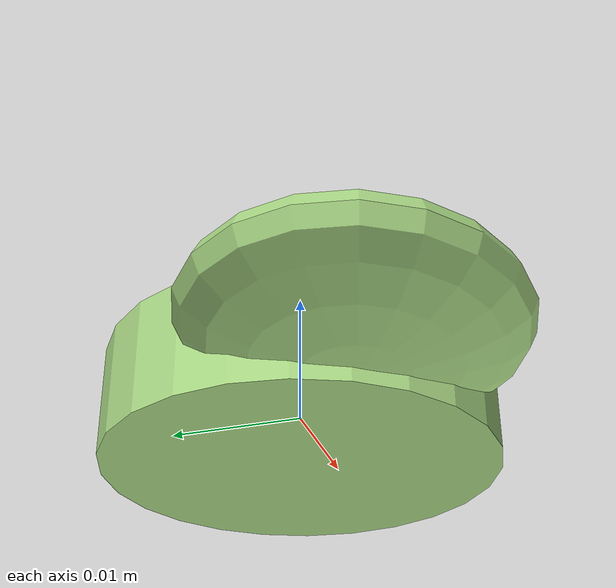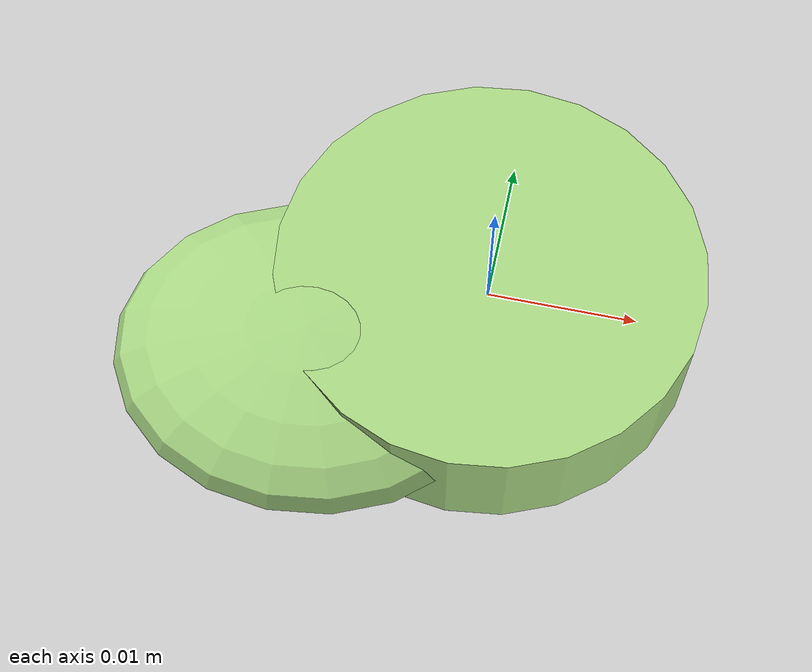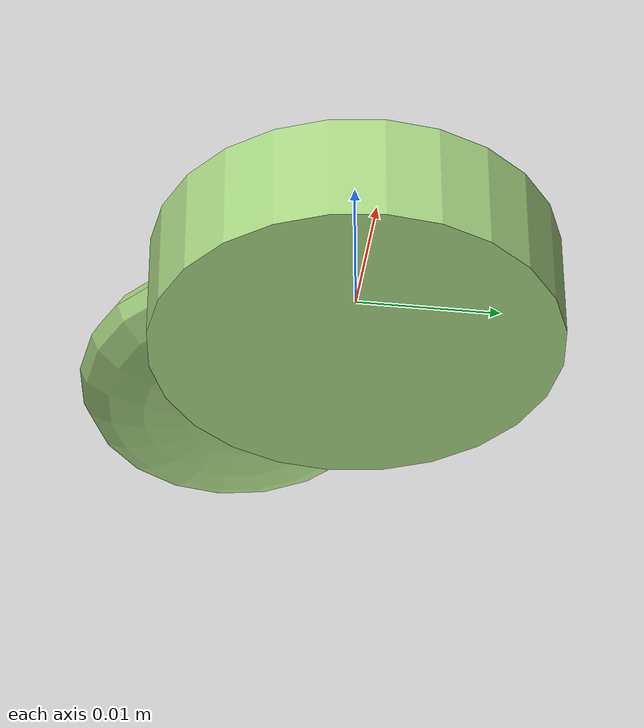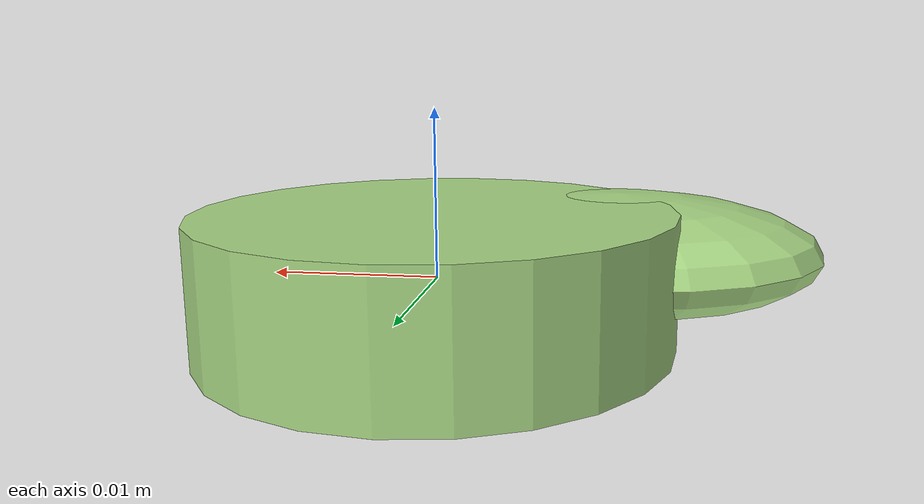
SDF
<?xml version="1.0" ?>
<!-- |    This document was autogenerated by xmacro from data/veggie_template/veggie_base.sdf.xacro  | -->
<!-- |    EDITING THIS FILE BY HAND IS NOT RECOMMENDED                                               | -->
<sdf version="1.8">
	<!-- Parameters -->
	<!-- Base -->
	<!-- Joint 0 -->
	<!-- Link 1 -->
	<!-- Joint 1 -->
	<!-- Link 2 -->
	<!-- Primitives -->
	<!-- All dimensions are half -->
	<!-- Object -->
	<model name="veggie">
		<!-- link0 -->
		<link name="link0">
			<inertial>
				<mass>0.0051059769550308165</mass>
				<inertia>
					<ixx>2.8433266306020443e-07</ixx>
					<ixy>0</ixy>
					<ixz>0</ixz>
					<iyy>2.8433266306020443e-07</iyy>
					<iyz>0</iyz>
					<izz>5.129898910415295e-07</izz>
				</inertia>
			</inertial>
			<visual name="link0_visual">
				<pose>0 0 0 0 0 0</pose>
				<geometry>
					<cylinder>
						<radius>0.014175225492302636</radius>
						<length>0.008088500371612604</length>
					</cylinder>
				</geometry>
				<material>
					<ambient>0.659 0.839 0.514 1</ambient>
					<diffuse>0.659 0.839 0.514 1</diffuse>
					<specular>0 0 0 0</specular>
					<emissive>0 0 0 1</emissive>
				</material>
			</visual>
			<collision name="link0_collision">
				<pose>0 0 0 0 0 0 </pose>
				<geometry>
					<cylinder>
						<radius>0.014175225492302636</radius>
						<length>0.008088500371612604</length>
					</cylinder>
				</geometry>
			</collision>
		</link>
		<!-- link1 -->
		<joint name="joint0" type="fixed">
			<pose relative_to="link0">-0.010618459681143175 -0.006995617119625832 0.0005098601501914602 0.0 0.0 0.0</pose>
			<parent>link0</parent>
			<child>link1</child>
		</joint>
		<link name="link1">
			<pose relative_to="joint0">0 0 0 0 0 0</pose>
			<inertial>
				<mass>0.002236216005277235</mass>
				<inertia>
					<ixx>6.151725047732688e-08</ixx>
					<ixy>0</ixy>
					<ixz>0</ixz>
					<iyy>8.155585608044506e-08</iyy>
					<iyz>0</iyz>
					<izz>1.3087964095995147e-07</izz>
				</inertia>
			</inertial>
			<visual name="link1_visual">
				<pose>0 0 0 0 0 0</pose>
				<geometry>
					<ellipsoid>
						<radii>0.012989247856329097 0.011131749262544767 0.0036921276458094696</radii>
					</ellipsoid>
				</geometry>
				<material>
					<ambient>0.659 0.839 0.514 1</ambient>
					<diffuse>0.659 0.839 0.514 1</diffuse>
					<specular>0 0 0 0</specular>
					<emissive>0 0 0 1</emissive>
				</material>
			</visual>
			<collision name="link1_collision">
				<pose>0 0 0 0 0 0 </pose>
				<geometry>
					<ellipsoid>
						<radii>0.012989247856329097 0.011131749262544767 0.0036921276458094696</radii>
					</ellipsoid>
				</geometry>
			</collision>
		</link>
		<!-- link2 -->
	</model>
</sdf>
